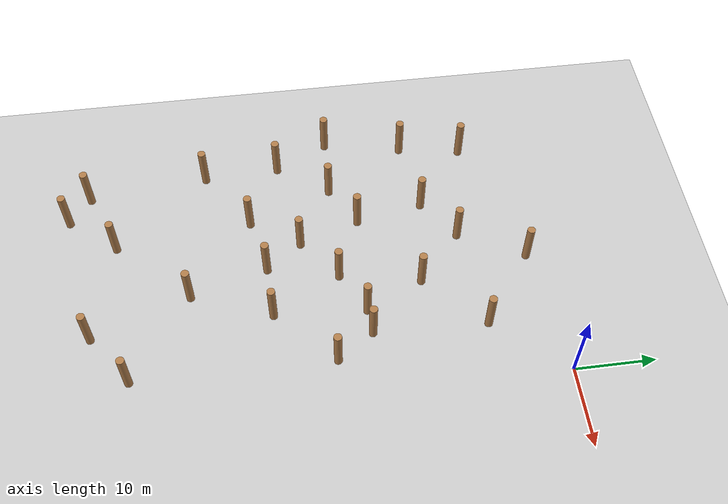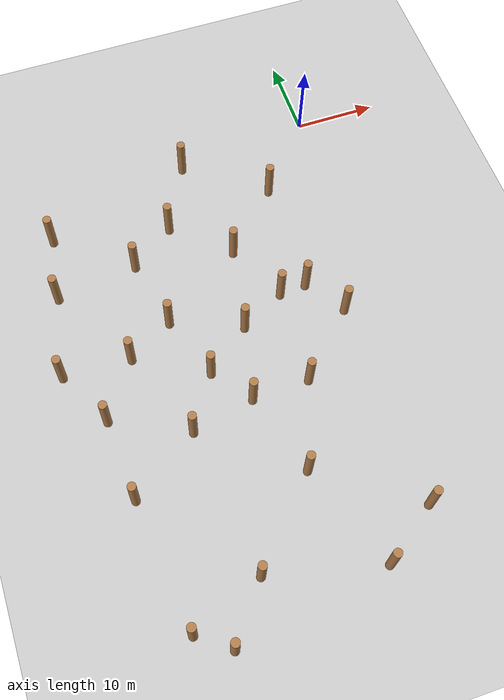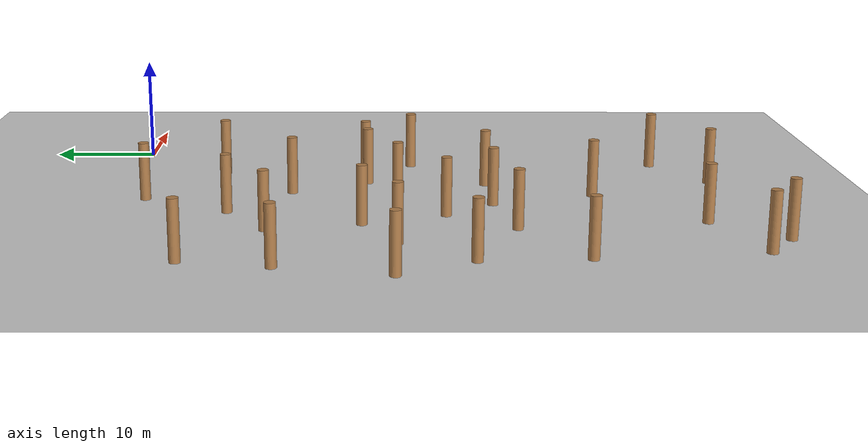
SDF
<sdf version="1.6">
 <world name="default">
  <model name="ground_plane">
   <static>1</static>
   <link name="link">
    <collision name="collision">
     <geometry><plane><normal>0 0 1</normal><size>100 100</size></plane></geometry>
     <surface><friction><ode><mu>100</mu><mu2>50</mu2></ode></friction></surface>
    </collision>
    <visual name="visual">
     <cast_shadows>0</cast_shadows>
     <geometry><plane><normal>0 0 1</normal><size>100 100</size></plane></geometry>
     <material>
      <script><uri>file://media/materials/scripts/gazebo.material</uri><name>Gazebo/Grey</name></script>
     </material>
    </visual>
   </link>
  </model>
  <model name="WoodPillars_12">
   <link name="link_clone_11">
    <inertial>
     <mass>1</mass>
     <inertia><ixx>0.145833</ixx><ixy>0</ixy><ixz>0</ixz><iyy>0.145833</iyy><iyz>0</iyz><izz>0.125</izz></inertia>
    </inertial>
    <pose>20.1245 17.4079 -2e-06 0 -0 -0.001289</pose>
    <visual name="visual">
     <geometry><cylinder><radius>0.5</radius><length>5.50507</length></cylinder></geometry>
     <material>
      <script><name>Gazebo/Wood</name><uri>file://media/materials/scripts/gazebo.material</uri></script>
      <shader type="pixel"/>
     </material>
    </visual>
    <collision name="collision">
     <geometry><cylinder><radius>0.5</radius><length>5.50507</length></cylinder></geometry>
     <surface>
      <friction>
       <ode><mu>1</mu><mu2>1</mu2><fdir1>0 0 0</fdir1><slip1>0</slip1><slip2>0</slip2></ode>
       <torsional>
        <coefficient>1</coefficient>
        <patch_radius>0</patch_radius>
        <surface_radius>0</surface_radius>
        <use_patch_radius>1</use_patch_radius>
        <ode><slip>0</slip></ode>
       </torsional>
      </friction>
      <bounce><restitution_coefficient>0</restitution_coefficient><threshold>1e+06</threshold></bounce>
      <contact>
       <collide_without_contact>0</collide_without_contact>
       <collide_without_contact_bitmask>1</collide_without_contact_bitmask>
       <collide_bitmask>1</collide_bitmask>
       <ode>
        <soft_cfm>0</soft_cfm>
        <soft_erp>0.2</soft_erp>
        <kp>1e+13</kp>
        <kd>1</kd>
        <max_vel>0.01</max_vel>
        <min_depth>0</min_depth>
       </ode>
       <bullet>
        <split_impulse>1</split_impulse>
        <split_impulse_penetration_threshold>-0.01</split_impulse_penetration_threshold>
        <soft_cfm>0</soft_cfm>
        <soft_erp>0.2</soft_erp>
        <kp>1e+13</kp>
        <kd>1</kd>
       </bullet>
      </contact>
     </surface>
    </collision>
   </link>
   <link name="link_clone_21">
    <inertial>
     <mass>1</mass>
     <inertia><ixx>0.145833</ixx><ixy>0</ixy><ixz>0</ixz><iyy>0.145833</iyy><iyz>0</iyz><izz>0.125</izz></inertia>
    </inertial>
    <pose>15.2748 11.406 -1e-06 0 -0 -0.001289</pose>
    <visual name="visual">
     <geometry><cylinder><radius>0.5</radius><length>5.50507</length></cylinder></geometry>
     <material>
      <script><name>Gazebo/Wood</name><uri>file://media/materials/scripts/gazebo.material</uri></script>
      <shader type="pixel"/>
     </material>
    </visual>
    <collision name="collision">
     <geometry><cylinder><radius>0.5</radius><length>5.50507</length></cylinder></geometry>
     <surface>
      <friction>
       <ode><mu>1</mu><mu2>1</mu2><fdir1>0 0 0</fdir1><slip1>0</slip1><slip2>0</slip2></ode>
       <torsional>
        <coefficient>1</coefficient>
        <patch_radius>0</patch_radius>
        <surface_radius>0</surface_radius>
        <use_patch_radius>1</use_patch_radius>
        <ode><slip>0</slip></ode>
       </torsional>
      </friction>
      <bounce><restitution_coefficient>0</restitution_coefficient><threshold>1e+06</threshold></bounce>
      <contact>
       <collide_without_contact>0</collide_without_contact>
       <collide_without_contact_bitmask>1</collide_without_contact_bitmask>
       <collide_bitmask>1</collide_bitmask>
       <ode>
        <soft_cfm>0</soft_cfm>
        <soft_erp>0.2</soft_erp>
        <kp>1e+13</kp>
        <kd>1</kd>
        <max_vel>0.01</max_vel>
        <min_depth>0</min_depth>
       </ode>
       <bullet>
        <split_impulse>1</split_impulse>
        <split_impulse_penetration_threshold>-0.01</split_impulse_penetration_threshold>
        <soft_cfm>0</soft_cfm>
        <soft_erp>0.2</soft_erp>
        <kp>1e+13</kp>
        <kd>1</kd>
       </bullet>
      </contact>
     </surface>
    </collision>
   </link>
   <link name="link_clone_25">
    <inertial>
     <mass>1</mass>
     <inertia><ixx>0.145833</ixx><ixy>0</ixy><ixz>0</ixz><iyy>0.145833</iyy><iyz>0</iyz><izz>0.125</izz></inertia>
    </inertial>
    <pose>11.7271 14.0632 -1e-06 0 -0 -0.001289</pose>
    <visual name="visual">
     <geometry><cylinder><radius>0.5</radius><length>5.50507</length></cylinder></geometry>
     <material>
      <script><name>Gazebo/Wood</name><uri>file://media/materials/scripts/gazebo.material</uri></script>
      <shader type="pixel"/>
     </material>
    </visual>
    <collision name="collision">
     <geometry><cylinder><radius>0.5</radius><length>5.50507</length></cylinder></geometry>
     <surface>
      <friction>
       <ode><mu>1</mu><mu2>1</mu2><fdir1>0 0 0</fdir1><slip1>0</slip1><slip2>0</slip2></ode>
       <torsional>
        <coefficient>1</coefficient>
        <patch_radius>0</patch_radius>
        <surface_radius>0</surface_radius>
        <use_patch_radius>1</use_patch_radius>
        <ode><slip>0</slip></ode>
       </torsional>
      </friction>
      <bounce><restitution_coefficient>0</restitution_coefficient><threshold>1e+06</threshold></bounce>
      <contact>
       <collide_without_contact>0</collide_without_contact>
       <collide_without_contact_bitmask>1</collide_without_contact_bitmask>
       <collide_bitmask>1</collide_bitmask>
       <ode>
        <soft_cfm>0</soft_cfm>
        <soft_erp>0.2</soft_erp>
        <kp>1e+13</kp>
        <kd>1</kd>
        <max_vel>0.01</max_vel>
        <min_depth>0</min_depth>
       </ode>
       <bullet>
        <split_impulse>1</split_impulse>
        <split_impulse_penetration_threshold>-0.01</split_impulse_penetration_threshold>
        <soft_cfm>0</soft_cfm>
        <soft_erp>0.2</soft_erp>
        <kp>1e+13</kp>
        <kd>1</kd>
       </bullet>
      </contact>
     </surface>
    </collision>
   </link>
   <link name="link_clone_33">
    <inertial>
     <mass>1</mass>
     <inertia><ixx>0.145833</ixx><ixy>0</ixy><ixz>0</ixz><iyy>0.145833</iyy><iyz>0</iyz><izz>0.125</izz></inertia>
    </inertial>
    <pose>39.6457 18.8804 -3e-06 0 -0 -0.001289</pose>
    <visual name="visual">
     <geometry><cylinder><radius>0.5</radius><length>5.50507</length></cylinder></geometry>
     <material>
      <script><name>Gazebo/Wood</name><uri>file://media/materials/scripts/gazebo.material</uri></script>
      <shader type="pixel"/>
     </material>
    </visual>
    <collision name="collision">
     <geometry><cylinder><radius>0.5</radius><length>5.50507</length></cylinder></geometry>
     <surface>
      <friction>
       <ode><mu>1</mu><mu2>1</mu2><fdir1>0 0 0</fdir1><slip1>0</slip1><slip2>0</slip2></ode>
       <torsional>
        <coefficient>1</coefficient>
        <patch_radius>0</patch_radius>
        <surface_radius>0</surface_radius>
        <use_patch_radius>1</use_patch_radius>
        <ode><slip>0</slip></ode>
       </torsional>
      </friction>
      <bounce><restitution_coefficient>0</restitution_coefficient><threshold>1e+06</threshold></bounce>
      <contact>
       <collide_without_contact>0</collide_without_contact>
       <collide_without_contact_bitmask>1</collide_without_contact_bitmask>
       <collide_bitmask>1</collide_bitmask>
       <ode>
        <soft_cfm>0</soft_cfm>
        <soft_erp>0.2</soft_erp>
        <kp>1e+13</kp>
        <kd>1</kd>
        <max_vel>0.01</max_vel>
        <min_depth>0</min_depth>
       </ode>
       <bullet>
        <split_impulse>1</split_impulse>
        <split_impulse_penetration_threshold>-0.01</split_impulse_penetration_threshold>
        <soft_cfm>0</soft_cfm>
        <soft_erp>0.2</soft_erp>
        <kp>1e+13</kp>
        <kd>1</kd>
       </bullet>
      </contact>
     </surface>
    </collision>
   </link>
   <link name="link_clone_5">
    <inertial>
     <mass>1</mass>
     <inertia><ixx>0.145833</ixx><ixy>0</ixy><ixz>0</ixz><iyy>0.145833</iyy><iyz>0</iyz><izz>0.125</izz></inertia>
    </inertial>
    <pose>33.2189 14.316 -3e-06 0 -0 -0.001289</pose>
    <visual name="visual">
     <geometry><cylinder><radius>0.5</radius><length>5.50507</length></cylinder></geometry>
     <material>
      <script><name>Gazebo/Wood</name><uri>file://media/materials/scripts/gazebo.material</uri></script>
      <shader type="pixel"/>
     </material>
    </visual>
    <collision name="collision">
     <geometry><cylinder><radius>0.5</radius><length>5.50507</length></cylinder></geometry>
     <surface>
      <friction>
       <ode><mu>1</mu><mu2>1</mu2><fdir1>0 0 0</fdir1><slip1>0</slip1><slip2>0</slip2></ode>
       <torsional>
        <coefficient>1</coefficient>
        <patch_radius>0</patch_radius>
        <surface_radius>0</surface_radius>
        <use_patch_radius>1</use_patch_radius>
        <ode><slip>0</slip></ode>
       </torsional>
      </friction>
      <bounce><restitution_coefficient>0</restitution_coefficient><threshold>1e+06</threshold></bounce>
      <contact>
       <collide_without_contact>0</collide_without_contact>
       <collide_without_contact_bitmask>1</collide_without_contact_bitmask>
       <collide_bitmask>1</collide_bitmask>
       <ode>
        <soft_cfm>0</soft_cfm>
        <soft_erp>0.2</soft_erp>
        <kp>1e+13</kp>
        <kd>1</kd>
        <max_vel>0.01</max_vel>
        <min_depth>0</min_depth>
       </ode>
       <bullet>
        <split_impulse>1</split_impulse>
        <split_impulse_penetration_threshold>-0.01</split_impulse_penetration_threshold>
        <soft_cfm>0</soft_cfm>
        <soft_erp>0.2</soft_erp>
        <kp>1e+13</kp>
        <kd>1</kd>
       </bullet>
      </contact>
     </surface>
    </collision>
   </link>
   <static>0</static>
   <pose>-44.1918 -70.8883 2.75253 0 -0 0.001373</pose>
  </model>
  <model name="WoodPillars_13">
   <link name="link_clone">
    <inertial>
     <mass>1</mass>
     <inertia><ixx>0.145833</ixx><ixy>0</ixy><ixz>0</ixz><iyy>0.145833</iyy><iyz>0</iyz><izz>0.125</izz></inertia>
    </inertial>
    <pose>17.6954 -2.91348 -2e-06 0 -0 -0.001289</pose>
    <visual name="visual">
     <geometry><cylinder><radius>0.5</radius><length>5.50507</length></cylinder></geometry>
     <material>
      <script><name>Gazebo/Wood</name><uri>file://media/materials/scripts/gazebo.material</uri></script>
      <shader type="pixel"/>
     </material>
    </visual>
    <collision name="collision">
     <geometry><cylinder><radius>0.5</radius><length>5.50507</length></cylinder></geometry>
     <surface>
      <friction>
       <ode><mu>1</mu><mu2>1</mu2><fdir1>0 0 0</fdir1><slip1>0</slip1><slip2>0</slip2></ode>
       <torsional>
        <coefficient>1</coefficient>
        <patch_radius>0</patch_radius>
        <surface_radius>0</surface_radius>
        <use_patch_radius>1</use_patch_radius>
        <ode><slip>0</slip></ode>
       </torsional>
      </friction>
      <bounce><restitution_coefficient>0</restitution_coefficient><threshold>1e+06</threshold></bounce>
      <contact>
       <collide_without_contact>0</collide_without_contact>
       <collide_without_contact_bitmask>1</collide_without_contact_bitmask>
       <collide_bitmask>1</collide_bitmask>
       <ode>
        <soft_cfm>0</soft_cfm>
        <soft_erp>0.2</soft_erp>
        <kp>1e+13</kp>
        <kd>1</kd>
        <max_vel>0.01</max_vel>
        <min_depth>0</min_depth>
       </ode>
       <bullet>
        <split_impulse>1</split_impulse>
        <split_impulse_penetration_threshold>-0.01</split_impulse_penetration_threshold>
        <soft_cfm>0</soft_cfm>
        <soft_erp>0.2</soft_erp>
        <kp>1e+13</kp>
        <kd>1</kd>
       </bullet>
      </contact>
     </surface>
    </collision>
   </link>
   <link name="link_clone_12">
    <inertial>
     <mass>1</mass>
     <inertia><ixx>0.145833</ixx><ixy>0</ixy><ixz>0</ixz><iyy>0.145833</iyy><iyz>0</iyz><izz>0.125</izz></inertia>
    </inertial>
    <pose>36.6063 2.3916 -3e-06 0 -0 -0.001289</pose>
    <visual name="visual">
     <geometry><cylinder><radius>0.5</radius><length>5.50507</length></cylinder></geometry>
     <material>
      <script><name>Gazebo/Wood</name><uri>file://media/materials/scripts/gazebo.material</uri></script>
      <shader type="pixel"/>
     </material>
    </visual>
    <collision name="collision">
     <geometry><cylinder><radius>0.5</radius><length>5.50507</length></cylinder></geometry>
     <surface>
      <friction>
       <ode><mu>1</mu><mu2>1</mu2><fdir1>0 0 0</fdir1><slip1>0</slip1><slip2>0</slip2></ode>
       <torsional>
        <coefficient>1</coefficient>
        <patch_radius>0</patch_radius>
        <surface_radius>0</surface_radius>
        <use_patch_radius>1</use_patch_radius>
        <ode><slip>0</slip></ode>
       </torsional>
      </friction>
      <bounce><restitution_coefficient>0</restitution_coefficient><threshold>1e+06</threshold></bounce>
      <contact>
       <collide_without_contact>0</collide_without_contact>
       <collide_without_contact_bitmask>1</collide_without_contact_bitmask>
       <collide_bitmask>1</collide_bitmask>
       <ode>
        <soft_cfm>0</soft_cfm>
        <soft_erp>0.2</soft_erp>
        <kp>1e+13</kp>
        <kd>1</kd>
        <max_vel>0.01</max_vel>
        <min_depth>0</min_depth>
       </ode>
       <bullet>
        <split_impulse>1</split_impulse>
        <split_impulse_penetration_threshold>-0.01</split_impulse_penetration_threshold>
        <soft_cfm>0</soft_cfm>
        <soft_erp>0.2</soft_erp>
        <kp>1e+13</kp>
        <kd>1</kd>
       </bullet>
      </contact>
     </surface>
    </collision>
   </link>
   <link name="link_clone_13">
    <inertial>
     <mass>1</mass>
     <inertia><ixx>0.145833</ixx><ixy>0</ixy><ixz>0</ixz><iyy>0.145833</iyy><iyz>0</iyz><izz>0.125</izz></inertia>
    </inertial>
    <pose>32.2715 -23.3528 -3e-06 0 -0 -0.001289</pose>
    <visual name="visual">
     <geometry><cylinder><radius>0.5</radius><length>5.50507</length></cylinder></geometry>
     <material>
      <script><name>Gazebo/Wood</name><uri>file://media/materials/scripts/gazebo.material</uri></script>
      <shader type="pixel"/>
     </material>
    </visual>
    <collision name="collision">
     <geometry><cylinder><radius>0.5</radius><length>5.50507</length></cylinder></geometry>
     <surface>
      <friction>
       <ode><mu>1</mu><mu2>1</mu2><fdir1>0 0 0</fdir1><slip1>0</slip1><slip2>0</slip2></ode>
       <torsional>
        <coefficient>1</coefficient>
        <patch_radius>0</patch_radius>
        <surface_radius>0</surface_radius>
        <use_patch_radius>1</use_patch_radius>
        <ode><slip>0</slip></ode>
       </torsional>
      </friction>
      <bounce><restitution_coefficient>0</restitution_coefficient><threshold>1e+06</threshold></bounce>
      <contact>
       <collide_without_contact>0</collide_without_contact>
       <collide_without_contact_bitmask>1</collide_without_contact_bitmask>
       <collide_bitmask>1</collide_bitmask>
       <ode>
        <soft_cfm>0</soft_cfm>
        <soft_erp>0.2</soft_erp>
        <kp>1e+13</kp>
        <kd>1</kd>
        <max_vel>0.01</max_vel>
        <min_depth>0</min_depth>
       </ode>
       <bullet>
        <split_impulse>1</split_impulse>
        <split_impulse_penetration_threshold>-0.01</split_impulse_penetration_threshold>
        <soft_cfm>0</soft_cfm>
        <soft_erp>0.2</soft_erp>
        <kp>1e+13</kp>
        <kd>1</kd>
       </bullet>
      </contact>
     </surface>
    </collision>
   </link>
   <link name="link_clone_14">
    <inertial>
     <mass>1</mass>
     <inertia><ixx>0.145833</ixx><ixy>0</ixy><ixz>0</ixz><iyy>0.145833</iyy><iyz>0</iyz><izz>0.125</izz></inertia>
    </inertial>
    <pose>9.31461 -20.9997 -1e-06 0 -0 -0.001289</pose>
    <visual name="visual">
     <geometry><cylinder><radius>0.5</radius><length>5.50507</length></cylinder></geometry>
     <material>
      <script><name>Gazebo/Wood</name><uri>file://media/materials/scripts/gazebo.material</uri></script>
      <shader type="pixel"/>
     </material>
    </visual>
    <collision name="collision">
     <geometry><cylinder><radius>0.5</radius><length>5.50507</length></cylinder></geometry>
     <surface>
      <friction>
       <ode><mu>1</mu><mu2>1</mu2><fdir1>0 0 0</fdir1><slip1>0</slip1><slip2>0</slip2></ode>
       <torsional>
        <coefficient>1</coefficient>
        <patch_radius>0</patch_radius>
        <surface_radius>0</surface_radius>
        <use_patch_radius>1</use_patch_radius>
        <ode><slip>0</slip></ode>
       </torsional>
      </friction>
      <bounce><restitution_coefficient>0</restitution_coefficient><threshold>1e+06</threshold></bounce>
      <contact>
       <collide_without_contact>0</collide_without_contact>
       <collide_without_contact_bitmask>1</collide_without_contact_bitmask>
       <collide_bitmask>1</collide_bitmask>
       <ode>
        <soft_cfm>0</soft_cfm>
        <soft_erp>0.2</soft_erp>
        <kp>1e+13</kp>
        <kd>1</kd>
        <max_vel>0.01</max_vel>
        <min_depth>0</min_depth>
       </ode>
       <bullet>
        <split_impulse>1</split_impulse>
        <split_impulse_penetration_threshold>-0.01</split_impulse_penetration_threshold>
        <soft_cfm>0</soft_cfm>
        <soft_erp>0.2</soft_erp>
        <kp>1e+13</kp>
        <kd>1</kd>
       </bullet>
      </contact>
     </surface>
    </collision>
   </link>
   <link name="link_clone_15">
    <inertial>
     <mass>1</mass>
     <inertia><ixx>0.145833</ixx><ixy>0</ixy><ixz>0</ixz><iyy>0.145833</iyy><iyz>0</iyz><izz>0.125</izz></inertia>
    </inertial>
    <pose>17.9894 -25.1945 -2e-06 0 -0 -0.001289</pose>
    <visual name="visual">
     <geometry><cylinder><radius>0.5</radius><length>5.50507</length></cylinder></geometry>
     <material>
      <script><name>Gazebo/Wood</name><uri>file://media/materials/scripts/gazebo.material</uri></script>
      <shader type="pixel"/>
     </material>
    </visual>
    <collision name="collision">
     <geometry><cylinder><radius>0.5</radius><length>5.50507</length></cylinder></geometry>
     <surface>
      <friction>
       <ode><mu>1</mu><mu2>1</mu2><fdir1>0 0 0</fdir1><slip1>0</slip1><slip2>0</slip2></ode>
       <torsional>
        <coefficient>1</coefficient>
        <patch_radius>0</patch_radius>
        <surface_radius>0</surface_radius>
        <use_patch_radius>1</use_patch_radius>
        <ode><slip>0</slip></ode>
       </torsional>
      </friction>
      <bounce><restitution_coefficient>0</restitution_coefficient><threshold>1e+06</threshold></bounce>
      <contact>
       <collide_without_contact>0</collide_without_contact>
       <collide_without_contact_bitmask>1</collide_without_contact_bitmask>
       <collide_bitmask>1</collide_bitmask>
       <ode>
        <soft_cfm>0</soft_cfm>
        <soft_erp>0.2</soft_erp>
        <kp>1e+13</kp>
        <kd>1</kd>
        <max_vel>0.01</max_vel>
        <min_depth>0</min_depth>
       </ode>
       <bullet>
        <split_impulse>1</split_impulse>
        <split_impulse_penetration_threshold>-0.01</split_impulse_penetration_threshold>
        <soft_cfm>0</soft_cfm>
        <soft_erp>0.2</soft_erp>
        <kp>1e+13</kp>
        <kd>1</kd>
       </bullet>
      </contact>
     </surface>
    </collision>
   </link>
   <link name="link_clone_16">
    <inertial>
     <mass>1</mass>
     <inertia><ixx>0.145833</ixx><ixy>0</ixy><ixz>0</ixz><iyy>0.145833</iyy><iyz>0</iyz><izz>0.125</izz></inertia>
    </inertial>
    <pose>32.9662 -11.9429 -3e-06 0 -0 -0.001289</pose>
    <visual name="visual">
     <geometry><cylinder><radius>0.5</radius><length>5.50507</length></cylinder></geometry>
     <material>
      <script><name>Gazebo/Wood</name><uri>file://media/materials/scripts/gazebo.material</uri></script>
      <shader type="pixel"/>
     </material>
    </visual>
    <collision name="collision">
     <geometry><cylinder><radius>0.5</radius><length>5.50507</length></cylinder></geometry>
     <surface>
      <friction>
       <ode><mu>1</mu><mu2>1</mu2><fdir1>0 0 0</fdir1><slip1>0</slip1><slip2>0</slip2></ode>
       <torsional>
        <coefficient>1</coefficient>
        <patch_radius>0</patch_radius>
        <surface_radius>0</surface_radius>
        <use_patch_radius>1</use_patch_radius>
        <ode><slip>0</slip></ode>
       </torsional>
      </friction>
      <bounce><restitution_coefficient>0</restitution_coefficient><threshold>1e+06</threshold></bounce>
      <contact>
       <collide_without_contact>0</collide_without_contact>
       <collide_without_contact_bitmask>1</collide_without_contact_bitmask>
       <collide_bitmask>1</collide_bitmask>
       <ode>
        <soft_cfm>0</soft_cfm>
        <soft_erp>0.2</soft_erp>
        <kp>1e+13</kp>
        <kd>1</kd>
        <max_vel>0.01</max_vel>
        <min_depth>0</min_depth>
       </ode>
       <bullet>
        <split_impulse>1</split_impulse>
        <split_impulse_penetration_threshold>-0.01</split_impulse_penetration_threshold>
        <soft_cfm>0</soft_cfm>
        <soft_erp>0.2</soft_erp>
        <kp>1e+13</kp>
        <kd>1</kd>
       </bullet>
      </contact>
     </surface>
    </collision>
   </link>
   <link name="link_clone_17">
    <inertial>
     <mass>1</mass>
     <inertia><ixx>0.145833</ixx><ixy>0</ixy><ixz>0</ixz><iyy>0.145833</iyy><iyz>0</iyz><izz>0.125</izz></inertia>
    </inertial>
    <pose>19.3784 -11.4604 -2e-06 0 -0 -0.001289</pose>
    <visual name="visual">
     <geometry><cylinder><radius>0.5</radius><length>5.50507</length></cylinder></geometry>
     <material>
      <script><name>Gazebo/Wood</name><uri>file://media/materials/scripts/gazebo.material</uri></script>
      <shader type="pixel"/>
     </material>
    </visual>
    <collision name="collision">
     <geometry><cylinder><radius>0.5</radius><length>5.50507</length></cylinder></geometry>
     <surface>
      <friction>
       <ode><mu>1</mu><mu2>1</mu2><fdir1>0 0 0</fdir1><slip1>0</slip1><slip2>0</slip2></ode>
       <torsional>
        <coefficient>1</coefficient>
        <patch_radius>0</patch_radius>
        <surface_radius>0</surface_radius>
        <use_patch_radius>1</use_patch_radius>
        <ode><slip>0</slip></ode>
       </torsional>
      </friction>
      <bounce><restitution_coefficient>0</restitution_coefficient><threshold>1e+06</threshold></bounce>
      <contact>
       <collide_without_contact>0</collide_without_contact>
       <collide_without_contact_bitmask>1</collide_without_contact_bitmask>
       <collide_bitmask>1</collide_bitmask>
       <ode>
        <soft_cfm>0</soft_cfm>
        <soft_erp>0.2</soft_erp>
        <kp>1e+13</kp>
        <kd>1</kd>
        <max_vel>0.01</max_vel>
        <min_depth>0</min_depth>
       </ode>
       <bullet>
        <split_impulse>1</split_impulse>
        <split_impulse_penetration_threshold>-0.01</split_impulse_penetration_threshold>
        <soft_cfm>0</soft_cfm>
        <soft_erp>0.2</soft_erp>
        <kp>1e+13</kp>
        <kd>1</kd>
       </bullet>
      </contact>
     </surface>
    </collision>
   </link>
   <link name="link_clone_18">
    <inertial>
     <mass>1</mass>
     <inertia><ixx>0.145833</ixx><ixy>0</ixy><ixz>0</ixz><iyy>0.145833</iyy><iyz>0</iyz><izz>0.125</izz></inertia>
    </inertial>
    <pose>9.1573 3.67739 -1e-06 0 -0 -0.001289</pose>
    <visual name="visual">
     <geometry><cylinder><radius>0.5</radius><length>5.50507</length></cylinder></geometry>
     <material>
      <script><name>Gazebo/Wood</name><uri>file://media/materials/scripts/gazebo.material</uri></script>
      <shader type="pixel"/>
     </material>
    </visual>
    <collision name="collision">
     <geometry><cylinder><radius>0.5</radius><length>5.50507</length></cylinder></geometry>
     <surface>
      <friction>
       <ode><mu>1</mu><mu2>1</mu2><fdir1>0 0 0</fdir1><slip1>0</slip1><slip2>0</slip2></ode>
       <torsional>
        <coefficient>1</coefficient>
        <patch_radius>0</patch_radius>
        <surface_radius>0</surface_radius>
        <use_patch_radius>1</use_patch_radius>
        <ode><slip>0</slip></ode>
       </torsional>
      </friction>
      <bounce><restitution_coefficient>0</restitution_coefficient><threshold>1e+06</threshold></bounce>
      <contact>
       <collide_without_contact>0</collide_without_contact>
       <collide_without_contact_bitmask>1</collide_without_contact_bitmask>
       <collide_bitmask>1</collide_bitmask>
       <ode>
        <soft_cfm>0</soft_cfm>
        <soft_erp>0.2</soft_erp>
        <kp>1e+13</kp>
        <kd>1</kd>
        <max_vel>0.01</max_vel>
        <min_depth>0</min_depth>
       </ode>
       <bullet>
        <split_impulse>1</split_impulse>
        <split_impulse_penetration_threshold>-0.01</split_impulse_penetration_threshold>
        <soft_cfm>0</soft_cfm>
        <soft_erp>0.2</soft_erp>
        <kp>1e+13</kp>
        <kd>1</kd>
       </bullet>
      </contact>
     </surface>
    </collision>
   </link>
   <link name="link_clone_22">
    <inertial>
     <mass>1</mass>
     <inertia><ixx>0.145833</ixx><ixy>0</ixy><ixz>0</ixz><iyy>0.145833</iyy><iyz>0</iyz><izz>0.125</izz></inertia>
    </inertial>
    <pose>27.313 9.05961 -2e-06 0 -0 -0.001289</pose>
    <visual name="visual">
     <geometry><cylinder><radius>0.5</radius><length>5.50507</length></cylinder></geometry>
     <material>
      <script><name>Gazebo/Wood</name><uri>file://media/materials/scripts/gazebo.material</uri></script>
      <shader type="pixel"/>
     </material>
    </visual>
    <collision name="collision">
     <geometry><cylinder><radius>0.5</radius><length>5.50507</length></cylinder></geometry>
     <surface>
      <friction>
       <ode><mu>1</mu><mu2>1</mu2><fdir1>0 0 0</fdir1><slip1>0</slip1><slip2>0</slip2></ode>
       <torsional>
        <coefficient>1</coefficient>
        <patch_radius>0</patch_radius>
        <surface_radius>0</surface_radius>
        <use_patch_radius>1</use_patch_radius>
        <ode><slip>0</slip></ode>
       </torsional>
      </friction>
      <bounce><restitution_coefficient>0</restitution_coefficient><threshold>1e+06</threshold></bounce>
      <contact>
       <collide_without_contact>0</collide_without_contact>
       <collide_without_contact_bitmask>1</collide_without_contact_bitmask>
       <collide_bitmask>1</collide_bitmask>
       <ode>
        <soft_cfm>0</soft_cfm>
        <soft_erp>0.2</soft_erp>
        <kp>1e+13</kp>
        <kd>1</kd>
        <max_vel>0.01</max_vel>
        <min_depth>0</min_depth>
       </ode>
       <bullet>
        <split_impulse>1</split_impulse>
        <split_impulse_penetration_threshold>-0.01</split_impulse_penetration_threshold>
        <soft_cfm>0</soft_cfm>
        <soft_erp>0.2</soft_erp>
        <kp>1e+13</kp>
        <kd>1</kd>
       </bullet>
      </contact>
     </surface>
    </collision>
   </link>
   <link name="link_clone_23">
    <inertial>
     <mass>1</mass>
     <inertia><ixx>0.145833</ixx><ixy>0</ixy><ixz>0</ixz><iyy>0.145833</iyy><iyz>0</iyz><izz>0.125</izz></inertia>
    </inertial>
    <pose>29.5176 -4.71623 -3e-06 0 -0 -0.001289</pose>
    <visual name="visual">
     <geometry><cylinder><radius>0.5</radius><length>5.50507</length></cylinder></geometry>
     <material>
      <script><name>Gazebo/Wood</name><uri>file://media/materials/scripts/gazebo.material</uri></script>
      <shader type="pixel"/>
     </material>
    </visual>
    <collision name="collision">
     <geometry><cylinder><radius>0.5</radius><length>5.50507</length></cylinder></geometry>
     <surface>
      <friction>
       <ode><mu>1</mu><mu2>1</mu2><fdir1>0 0 0</fdir1><slip1>0</slip1><slip2>0</slip2></ode>
       <torsional>
        <coefficient>1</coefficient>
        <patch_radius>0</patch_radius>
        <surface_radius>0</surface_radius>
        <use_patch_radius>1</use_patch_radius>
        <ode><slip>0</slip></ode>
       </torsional>
      </friction>
      <bounce><restitution_coefficient>0</restitution_coefficient><threshold>1e+06</threshold></bounce>
      <contact>
       <collide_without_contact>0</collide_without_contact>
       <collide_without_contact_bitmask>1</collide_without_contact_bitmask>
       <collide_bitmask>1</collide_bitmask>
       <ode>
        <soft_cfm>0</soft_cfm>
        <soft_erp>0.2</soft_erp>
        <kp>1e+13</kp>
        <kd>1</kd>
        <max_vel>0.01</max_vel>
        <min_depth>0</min_depth>
       </ode>
       <bullet>
        <split_impulse>1</split_impulse>
        <split_impulse_penetration_threshold>-0.01</split_impulse_penetration_threshold>
        <soft_cfm>0</soft_cfm>
        <soft_erp>0.2</soft_erp>
        <kp>1e+13</kp>
        <kd>1</kd>
       </bullet>
      </contact>
     </surface>
    </collision>
   </link>
   <link name="link_clone_24">
    <inertial>
     <mass>1</mass>
     <inertia><ixx>0.145833</ixx><ixy>0</ixy><ixz>0</ixz><iyy>0.145833</iyy><iyz>0</iyz><izz>0.125</izz></inertia>
    </inertial>
    <pose>7.84688 -4.26113 -1e-06 0 -0 -0.001289</pose>
    <visual name="visual">
     <geometry><cylinder><radius>0.5</radius><length>5.50507</length></cylinder></geometry>
     <material>
      <script><name>Gazebo/Wood</name><uri>file://media/materials/scripts/gazebo.material</uri></script>
      <shader type="pixel"/>
     </material>
    </visual>
    <collision name="collision">
     <geometry><cylinder><radius>0.5</radius><length>5.50507</length></cylinder></geometry>
     <surface>
      <friction>
       <ode><mu>1</mu><mu2>1</mu2><fdir1>0 0 0</fdir1><slip1>0</slip1><slip2>0</slip2></ode>
       <torsional>
        <coefficient>1</coefficient>
        <patch_radius>0</patch_radius>
        <surface_radius>0</surface_radius>
        <use_patch_radius>1</use_patch_radius>
        <ode><slip>0</slip></ode>
       </torsional>
      </friction>
      <bounce><restitution_coefficient>0</restitution_coefficient><threshold>1e+06</threshold></bounce>
      <contact>
       <collide_without_contact>0</collide_without_contact>
       <collide_without_contact_bitmask>1</collide_without_contact_bitmask>
       <collide_bitmask>1</collide_bitmask>
       <ode>
        <soft_cfm>0</soft_cfm>
        <soft_erp>0.2</soft_erp>
        <kp>1e+13</kp>
        <kd>1</kd>
        <max_vel>0.01</max_vel>
        <min_depth>0</min_depth>
       </ode>
       <bullet>
        <split_impulse>1</split_impulse>
        <split_impulse_penetration_threshold>-0.01</split_impulse_penetration_threshold>
        <soft_cfm>0</soft_cfm>
        <soft_erp>0.2</soft_erp>
        <kp>1e+13</kp>
        <kd>1</kd>
       </bullet>
      </contact>
     </surface>
    </collision>
   </link>
   <link name="link_clone_26">
    <inertial>
     <mass>1</mass>
     <inertia><ixx>0.145833</ixx><ixy>0</ixy><ixz>0</ixz><iyy>0.145833</iyy><iyz>0</iyz><izz>0.125</izz></inertia>
    </inertial>
    <pose>13.9187 -14.5508 -1e-06 0 -0 -0.001289</pose>
    <visual name="visual">
     <geometry><cylinder><radius>0.5</radius><length>5.50507</length></cylinder></geometry>
     <material>
      <script><name>Gazebo/Wood</name><uri>file://media/materials/scripts/gazebo.material</uri></script>
      <shader type="pixel"/>
     </material>
    </visual>
    <collision name="collision">
     <geometry><cylinder><radius>0.5</radius><length>5.50507</length></cylinder></geometry>
     <surface>
      <friction>
       <ode><mu>1</mu><mu2>1</mu2><fdir1>0 0 0</fdir1><slip1>0</slip1><slip2>0</slip2></ode>
       <torsional>
        <coefficient>1</coefficient>
        <patch_radius>0</patch_radius>
        <surface_radius>0</surface_radius>
        <use_patch_radius>1</use_patch_radius>
        <ode><slip>0</slip></ode>
       </torsional>
      </friction>
      <bounce><restitution_coefficient>0</restitution_coefficient><threshold>1e+06</threshold></bounce>
      <contact>
       <collide_without_contact>0</collide_without_contact>
       <collide_without_contact_bitmask>1</collide_without_contact_bitmask>
       <collide_bitmask>1</collide_bitmask>
       <ode>
        <soft_cfm>0</soft_cfm>
        <soft_erp>0.2</soft_erp>
        <kp>1e+13</kp>
        <kd>1</kd>
        <max_vel>0.01</max_vel>
        <min_depth>0</min_depth>
       </ode>
       <bullet>
        <split_impulse>1</split_impulse>
        <split_impulse_penetration_threshold>-0.01</split_impulse_penetration_threshold>
        <soft_cfm>0</soft_cfm>
        <soft_erp>0.2</soft_erp>
        <kp>1e+13</kp>
        <kd>1</kd>
       </bullet>
      </contact>
     </surface>
    </collision>
   </link>
   <link name="link_clone_28">
    <inertial>
     <mass>1</mass>
     <inertia><ixx>0.145833</ixx><ixy>0</ixy><ixz>0</ixz><iyy>0.145833</iyy><iyz>0</iyz><izz>0.125</izz></inertia>
    </inertial>
    <pose>27.5353 -14.766 -3e-06 0 -0 -0.001289</pose>
    <visual name="visual">
     <geometry><cylinder><radius>0.5</radius><length>5.50507</length></cylinder></geometry>
     <material>
      <script><name>Gazebo/Wood</name><uri>file://media/materials/scripts/gazebo.material</uri></script>
      <shader type="pixel"/>
     </material>
    </visual>
    <collision name="collision">
     <geometry><cylinder><radius>0.5</radius><length>5.50507</length></cylinder></geometry>
     <surface>
      <friction>
       <ode><mu>1</mu><mu2>1</mu2><fdir1>0 0 0</fdir1><slip1>0</slip1><slip2>0</slip2></ode>
       <torsional>
        <coefficient>1</coefficient>
        <patch_radius>0</patch_radius>
        <surface_radius>0</surface_radius>
        <use_patch_radius>1</use_patch_radius>
        <ode><slip>0</slip></ode>
       </torsional>
      </friction>
      <bounce><restitution_coefficient>0</restitution_coefficient><threshold>1e+06</threshold></bounce>
      <contact>
       <collide_without_contact>0</collide_without_contact>
       <collide_without_contact_bitmask>1</collide_without_contact_bitmask>
       <collide_bitmask>1</collide_bitmask>
       <ode>
        <soft_cfm>0</soft_cfm>
        <soft_erp>0.2</soft_erp>
        <kp>1e+13</kp>
        <kd>1</kd>
        <max_vel>0.01</max_vel>
        <min_depth>0</min_depth>
       </ode>
       <bullet>
        <split_impulse>1</split_impulse>
        <split_impulse_penetration_threshold>-0.01</split_impulse_penetration_threshold>
        <soft_cfm>0</soft_cfm>
        <soft_erp>0.2</soft_erp>
        <kp>1e+13</kp>
        <kd>1</kd>
       </bullet>
      </contact>
     </surface>
    </collision>
   </link>
   <link name="link_clone_29">
    <inertial>
     <mass>1</mass>
     <inertia><ixx>0.145833</ixx><ixy>0</ixy><ixz>0</ixz><iyy>0.145833</iyy><iyz>0</iyz><izz>0.125</izz></inertia>
    </inertial>
    <pose>39.4401 -16.2696 -4e-06 0 -0 -0.001289</pose>
    <visual name="visual">
     <geometry><cylinder><radius>0.5</radius><length>5.50507</length></cylinder></geometry>
     <material>
      <script><name>Gazebo/Wood</name><uri>file://media/materials/scripts/gazebo.material</uri></script>
      <shader type="pixel"/>
     </material>
    </visual>
    <collision name="collision">
     <geometry><cylinder><radius>0.5</radius><length>5.50507</length></cylinder></geometry>
     <surface>
      <friction>
       <ode><mu>1</mu><mu2>1</mu2><fdir1>0 0 0</fdir1><slip1>0</slip1><slip2>0</slip2></ode>
       <torsional>
        <coefficient>1</coefficient>
        <patch_radius>0</patch_radius>
        <surface_radius>0</surface_radius>
        <use_patch_radius>1</use_patch_radius>
        <ode><slip>0</slip></ode>
       </torsional>
      </friction>
      <bounce><restitution_coefficient>0</restitution_coefficient><threshold>1e+06</threshold></bounce>
      <contact>
       <collide_without_contact>0</collide_without_contact>
       <collide_without_contact_bitmask>1</collide_without_contact_bitmask>
       <collide_bitmask>1</collide_bitmask>
       <ode>
        <soft_cfm>0</soft_cfm>
        <soft_erp>0.2</soft_erp>
        <kp>1e+13</kp>
        <kd>1</kd>
        <max_vel>0.01</max_vel>
        <min_depth>0</min_depth>
       </ode>
       <bullet>
        <split_impulse>1</split_impulse>
        <split_impulse_penetration_threshold>-0.01</split_impulse_penetration_threshold>
        <soft_cfm>0</soft_cfm>
        <soft_erp>0.2</soft_erp>
        <kp>1e+13</kp>
        <kd>1</kd>
       </bullet>
      </contact>
     </surface>
    </collision>
   </link>
   <link name="link_clone_34">
    <inertial>
     <mass>1</mass>
     <inertia><ixx>0.145833</ixx><ixy>0</ixy><ixz>0</ixz><iyy>0.145833</iyy><iyz>0</iyz><izz>0.125</izz></inertia>
    </inertial>
    <pose>25.4673 -23.5908 -3e-06 0 -0 -0.001289</pose>
    <visual name="visual">
     <geometry><cylinder><radius>0.5</radius><length>5.50507</length></cylinder></geometry>
     <material>
      <script><name>Gazebo/Wood</name><uri>file://media/materials/scripts/gazebo.material</uri></script>
      <shader type="pixel"/>
     </material>
    </visual>
    <collision name="collision">
     <geometry><cylinder><radius>0.5</radius><length>5.50507</length></cylinder></geometry>
     <surface>
      <friction>
       <ode><mu>1</mu><mu2>1</mu2><fdir1>0 0 0</fdir1><slip1>0</slip1><slip2>0</slip2></ode>
       <torsional>
        <coefficient>1</coefficient>
        <patch_radius>0</patch_radius>
        <surface_radius>0</surface_radius>
        <use_patch_radius>1</use_patch_radius>
        <ode><slip>0</slip></ode>
       </torsional>
      </friction>
      <bounce><restitution_coefficient>0</restitution_coefficient><threshold>1e+06</threshold></bounce>
      <contact>
       <collide_without_contact>0</collide_without_contact>
       <collide_without_contact_bitmask>1</collide_without_contact_bitmask>
       <collide_bitmask>1</collide_bitmask>
       <ode>
        <soft_cfm>0</soft_cfm>
        <soft_erp>0.2</soft_erp>
        <kp>1e+13</kp>
        <kd>1</kd>
        <max_vel>0.01</max_vel>
        <min_depth>0</min_depth>
       </ode>
       <bullet>
        <split_impulse>1</split_impulse>
        <split_impulse_penetration_threshold>-0.01</split_impulse_penetration_threshold>
        <soft_cfm>0</soft_cfm>
        <soft_erp>0.2</soft_erp>
        <kp>1e+13</kp>
        <kd>1</kd>
       </bullet>
      </contact>
     </surface>
    </collision>
   </link>
   <link name="link_clone_4">
    <inertial>
     <mass>1</mass>
     <inertia><ixx>0.145833</ixx><ixy>0</ixy><ixz>0</ixz><iyy>0.145833</iyy><iyz>0</iyz><izz>0.125</izz></inertia>
    </inertial>
    <pose>23.1128 0.93751 -2e-06 0 -0 -0.001289</pose>
    <visual name="visual">
     <geometry><cylinder><radius>0.5</radius><length>5.50507</length></cylinder></geometry>
     <material>
      <script><name>Gazebo/Wood</name><uri>file://media/materials/scripts/gazebo.material</uri></script>
      <shader type="pixel"/>
     </material>
    </visual>
    <collision name="collision">
     <geometry><cylinder><radius>0.5</radius><length>5.50507</length></cylinder></geometry>
     <surface>
      <friction>
       <ode><mu>1</mu><mu2>1</mu2><fdir1>0 0 0</fdir1><slip1>0</slip1><slip2>0</slip2></ode>
       <torsional>
        <coefficient>1</coefficient>
        <patch_radius>0</patch_radius>
        <surface_radius>0</surface_radius>
        <use_patch_radius>1</use_patch_radius>
        <ode><slip>0</slip></ode>
       </torsional>
      </friction>
      <bounce><restitution_coefficient>0</restitution_coefficient><threshold>1e+06</threshold></bounce>
      <contact>
       <collide_without_contact>0</collide_without_contact>
       <collide_without_contact_bitmask>1</collide_without_contact_bitmask>
       <collide_bitmask>1</collide_bitmask>
       <ode>
        <soft_cfm>0</soft_cfm>
        <soft_erp>0.2</soft_erp>
        <kp>1e+13</kp>
        <kd>1</kd>
        <max_vel>0.01</max_vel>
        <min_depth>0</min_depth>
       </ode>
       <bullet>
        <split_impulse>1</split_impulse>
        <split_impulse_penetration_threshold>-0.01</split_impulse_penetration_threshold>
        <soft_cfm>0</soft_cfm>
        <soft_erp>0.2</soft_erp>
        <kp>1e+13</kp>
        <kd>1</kd>
       </bullet>
      </contact>
     </surface>
    </collision>
   </link>
   <link name="link_clone_6">
    <inertial>
     <mass>1</mass>
     <inertia><ixx>0.145833</ixx><ixy>0</ixy><ixz>0</ixz><iyy>0.145833</iyy><iyz>0</iyz><izz>0.125</izz></inertia>
    </inertial>
    <pose>36.2258 -11.6926 -3e-06 0 -0 -0.001289</pose>
    <visual name="visual">
     <geometry><cylinder><radius>0.5</radius><length>5.50507</length></cylinder></geometry>
     <material>
      <script><name>Gazebo/Wood</name><uri>file://media/materials/scripts/gazebo.material</uri></script>
      <shader type="pixel"/>
     </material>
    </visual>
    <collision name="collision">
     <geometry><cylinder><radius>0.5</radius><length>5.50507</length></cylinder></geometry>
     <surface>
      <friction>
       <ode><mu>1</mu><mu2>1</mu2><fdir1>0 0 0</fdir1><slip1>0</slip1><slip2>0</slip2></ode>
       <torsional>
        <coefficient>1</coefficient>
        <patch_radius>0</patch_radius>
        <surface_radius>0</surface_radius>
        <use_patch_radius>1</use_patch_radius>
        <ode><slip>0</slip></ode>
       </torsional>
      </friction>
      <bounce><restitution_coefficient>0</restitution_coefficient><threshold>1e+06</threshold></bounce>
      <contact>
       <collide_without_contact>0</collide_without_contact>
       <collide_without_contact_bitmask>1</collide_without_contact_bitmask>
       <collide_bitmask>1</collide_bitmask>
       <ode>
        <soft_cfm>0</soft_cfm>
        <soft_erp>0.2</soft_erp>
        <kp>1e+13</kp>
        <kd>1</kd>
        <max_vel>0.01</max_vel>
        <min_depth>0</min_depth>
       </ode>
       <bullet>
        <split_impulse>1</split_impulse>
        <split_impulse_penetration_threshold>-0.01</split_impulse_penetration_threshold>
        <soft_cfm>0</soft_cfm>
        <soft_erp>0.2</soft_erp>
        <kp>1e+13</kp>
        <kd>1</kd>
       </bullet>
      </contact>
     </surface>
    </collision>
   </link>
   <link name="link_clone_7">
    <inertial>
     <mass>1</mass>
     <inertia><ixx>0.145833</ixx><ixy>0</ixy><ixz>0</ixz><iyy>0.145833</iyy><iyz>0</iyz><izz>0.125</izz></inertia>
    </inertial>
    <pose>22.0331 -19.0814 -2e-06 0 -0 -0.001289</pose>
    <visual name="visual">
     <geometry><cylinder><radius>0.5</radius><length>5.50507</length></cylinder></geometry>
     <material>
      <script><name>Gazebo/Wood</name><uri>file://media/materials/scripts/gazebo.material</uri></script>
      <shader type="pixel"/>
     </material>
    </visual>
    <collision name="collision">
     <geometry><cylinder><radius>0.5</radius><length>5.50507</length></cylinder></geometry>
     <surface>
      <friction>
       <ode><mu>1</mu><mu2>1</mu2><fdir1>0 0 0</fdir1><slip1>0</slip1><slip2>0</slip2></ode>
       <torsional>
        <coefficient>1</coefficient>
        <patch_radius>0</patch_radius>
        <surface_radius>0</surface_radius>
        <use_patch_radius>1</use_patch_radius>
        <ode><slip>0</slip></ode>
       </torsional>
      </friction>
      <bounce><restitution_coefficient>0</restitution_coefficient><threshold>1e+06</threshold></bounce>
      <contact>
       <collide_without_contact>0</collide_without_contact>
       <collide_without_contact_bitmask>1</collide_without_contact_bitmask>
       <collide_bitmask>1</collide_bitmask>
       <ode>
        <soft_cfm>0</soft_cfm>
        <soft_erp>0.2</soft_erp>
        <kp>1e+13</kp>
        <kd>1</kd>
        <max_vel>0.01</max_vel>
        <min_depth>0</min_depth>
       </ode>
       <bullet>
        <split_impulse>1</split_impulse>
        <split_impulse_penetration_threshold>-0.01</split_impulse_penetration_threshold>
        <soft_cfm>0</soft_cfm>
        <soft_erp>0.2</soft_erp>
        <kp>1e+13</kp>
        <kd>1</kd>
       </bullet>
      </contact>
     </surface>
    </collision>
   </link>
   <link name="link_clone_8">
    <inertial>
     <mass>1</mass>
     <inertia><ixx>0.145833</ixx><ixy>0</ixy><ixz>0</ixz><iyy>0.145833</iyy><iyz>0</iyz><izz>0.125</izz></inertia>
    </inertial>
    <pose>5.87636 -14.2578 -1e-06 0 -0 -0.001289</pose>
    <visual name="visual">
     <geometry><cylinder><radius>0.5</radius><length>5.50507</length></cylinder></geometry>
     <material>
      <script><name>Gazebo/Wood</name><uri>file://media/materials/scripts/gazebo.material</uri></script>
      <shader type="pixel"/>
     </material>
    </visual>
    <collision name="collision">
     <geometry><cylinder><radius>0.5</radius><length>5.50507</length></cylinder></geometry>
     <surface>
      <friction>
       <ode><mu>1</mu><mu2>1</mu2><fdir1>0 0 0</fdir1><slip1>0</slip1><slip2>0</slip2></ode>
       <torsional>
        <coefficient>1</coefficient>
        <patch_radius>0</patch_radius>
        <surface_radius>0</surface_radius>
        <use_patch_radius>1</use_patch_radius>
        <ode><slip>0</slip></ode>
       </torsional>
      </friction>
      <bounce><restitution_coefficient>0</restitution_coefficient><threshold>1e+06</threshold></bounce>
      <contact>
       <collide_without_contact>0</collide_without_contact>
       <collide_without_contact_bitmask>1</collide_without_contact_bitmask>
       <collide_bitmask>1</collide_bitmask>
       <ode>
        <soft_cfm>0</soft_cfm>
        <soft_erp>0.2</soft_erp>
        <kp>1e+13</kp>
        <kd>1</kd>
        <max_vel>0.01</max_vel>
        <min_depth>0</min_depth>
       </ode>
       <bullet>
        <split_impulse>1</split_impulse>
        <split_impulse_penetration_threshold>-0.01</split_impulse_penetration_threshold>
        <soft_cfm>0</soft_cfm>
        <soft_erp>0.2</soft_erp>
        <kp>1e+13</kp>
        <kd>1</kd>
       </bullet>
      </contact>
     </surface>
    </collision>
   </link>
   <static>0</static>
   <pose>-43.9989 -11.1335 2.75253 0 -0 0.001424</pose>
  </model>
  <model name="WoodPillar">
   <link name="link">
    <inertial>
     <mass>1</mass>
     <inertia><ixx>0.145833</ixx><ixy>0</ixy><ixz>0</ixz><iyy>0.145833</iyy><iyz>0</iyz><izz>0.125</izz></inertia>
    </inertial>
    <visual name="visual">
     <geometry><cylinder><radius>0.5</radius><length>5.50507</length></cylinder></geometry>
     <material>
      <script><name>Gazebo/Wood</name><uri>file://media/materials/scripts/gazebo.material</uri></script>
     </material>
    </visual>
    <collision name="collision">
     <geometry><cylinder><radius>0.5</radius><length>5.50507</length></cylinder></geometry>
     <surface>
      <friction>
       <ode><mu>1</mu><mu2>1</mu2><fdir1>0 0 0</fdir1><slip1>0</slip1><slip2>0</slip2></ode>
       <torsional>
        <coefficient>1</coefficient>
        <patch_radius>0</patch_radius>
        <surface_radius>0</surface_radius>
        <use_patch_radius>1</use_patch_radius>
        <ode><slip>0</slip></ode>
       </torsional>
      </friction>
      <bounce><restitution_coefficient>0</restitution_coefficient><threshold>1e+06</threshold></bounce>
      <contact>
       <collide_without_contact>0</collide_without_contact>
       <collide_without_contact_bitmask>1</collide_without_contact_bitmask>
       <collide_bitmask>1</collide_bitmask>
       <ode>
        <soft_cfm>0</soft_cfm>
        <soft_erp>0.2</soft_erp>
        <kp>1e+13</kp>
        <kd>1</kd>
        <max_vel>0.01</max_vel>
        <min_depth>0</min_depth>
       </ode>
       <bullet>
        <split_impulse>1</split_impulse>
        <split_impulse_penetration_threshold>-0.01</split_impulse_penetration_threshold>
        <soft_cfm>0</soft_cfm>
        <soft_erp>0.2</soft_erp>
        <kp>1e+13</kp>
        <kd>1</kd>
       </bullet>
      </contact>
     </surface>
    </collision>
   </link>
   <static>0</static>
   <pose>-34.139 -41.6921 2.75253 0 -0 0.001371</pose>
  </model>
  <model name="WoodPillar_0">
   <link name="link">
    <inertial>
     <mass>1</mass>
     <inertia><ixx>0.145833</ixx><ixy>0</ixy><ixz>0</ixz><iyy>0.145833</iyy><iyz>0</iyz><izz>0.125</izz></inertia>
    </inertial>
    <visual name="visual">
     <geometry><cylinder><radius>0.5</radius><length>5.50507</length></cylinder></geometry>
     <material>
      <script><name>Gazebo/Wood</name><uri>file://media/materials/scripts/gazebo.material</uri></script>
     </material>
    </visual>
    <collision name="collision">
     <geometry><cylinder><radius>0.5</radius><length>5.50507</length></cylinder></geometry>
     <surface>
      <friction>
       <ode><mu>1</mu><mu2>1</mu2><fdir1>0 0 0</fdir1><slip1>0</slip1><slip2>0</slip2></ode>
       <torsional>
        <coefficient>1</coefficient>
        <patch_radius>0</patch_radius>
        <surface_radius>0</surface_radius>
        <use_patch_radius>1</use_patch_radius>
        <ode><slip>0</slip></ode>
       </torsional>
      </friction>
      <bounce><restitution_coefficient>0</restitution_coefficient><threshold>1e+06</threshold></bounce>
      <contact>
       <collide_without_contact>0</collide_without_contact>
       <collide_without_contact_bitmask>1</collide_without_contact_bitmask>
       <collide_bitmask>1</collide_bitmask>
       <ode>
        <soft_cfm>0</soft_cfm>
        <soft_erp>0.2</soft_erp>
        <kp>1e+13</kp>
        <kd>1</kd>
        <max_vel>0.01</max_vel>
        <min_depth>0</min_depth>
       </ode>
       <bullet>
        <split_impulse>1</split_impulse>
        <split_impulse_penetration_threshold>-0.01</split_impulse_penetration_threshold>
        <soft_cfm>0</soft_cfm>
        <soft_erp>0.2</soft_erp>
        <kp>1e+13</kp>
        <kd>1</kd>
       </bullet>
      </contact>
     </surface>
    </collision>
   </link>
   <static>0</static>
   <pose>-15.5553 -44.3783 2.75253 0 -0 0.001244</pose>
  </model>
 </world>
</sdf>
